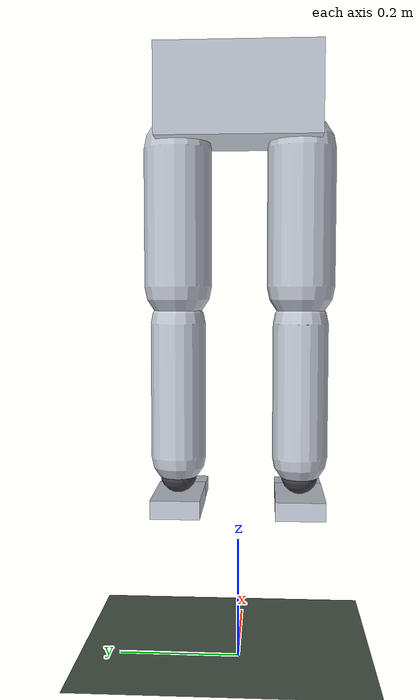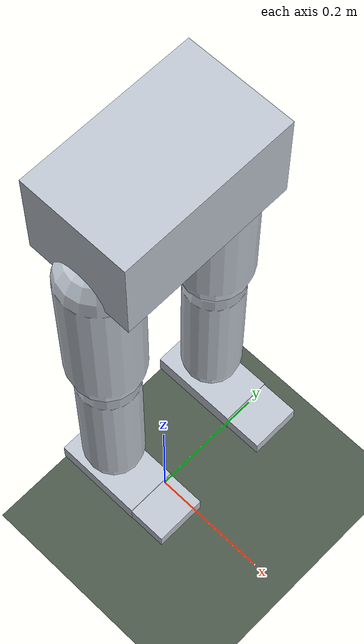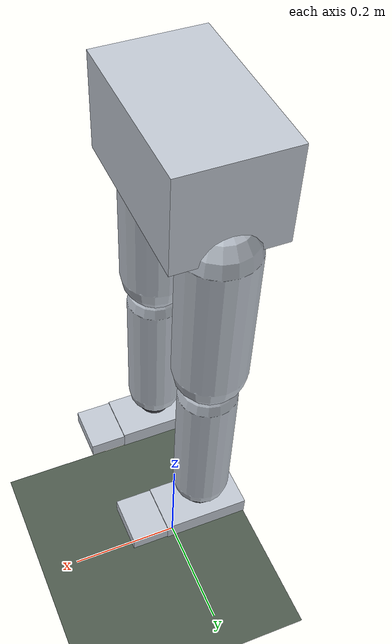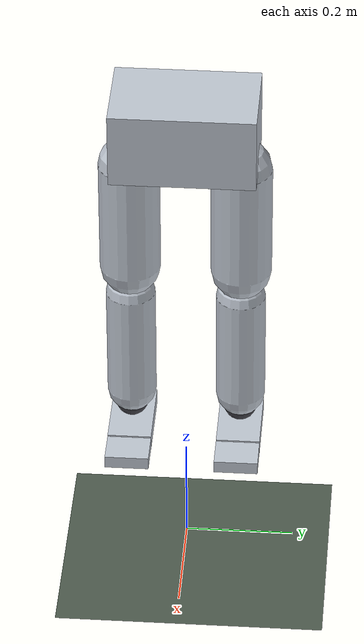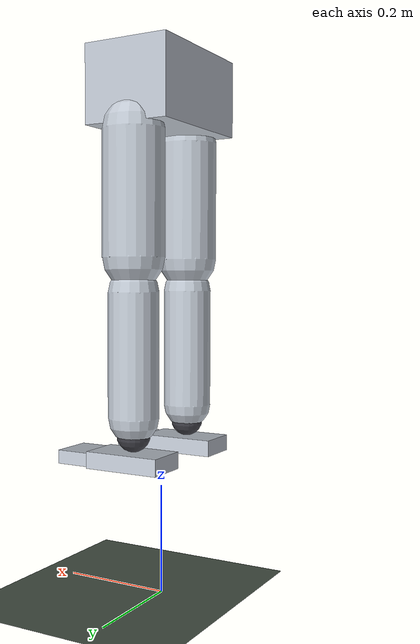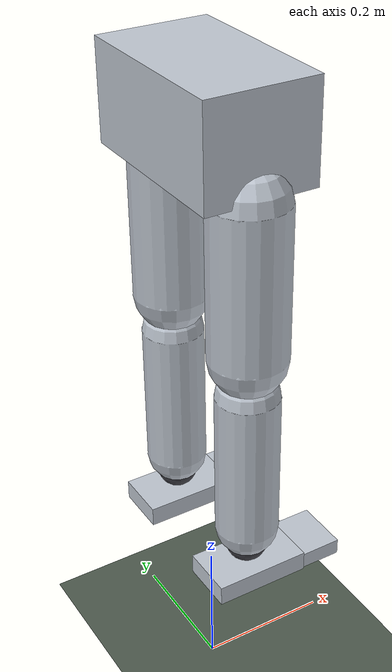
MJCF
<mujoco model="asimov1_legs">
  <compiler angle="radian" autolimits="true" />
  <option timestep="0.002" integrator="implicitfast" />
  <default>
    <geom friction="1.0 0.005 0.0001" rgba="0.75 0.78 0.82 1" />
  </default>
  <statistic center="0 0 0.495" extent="1.089" />
  <visual>
    <global azimuth="120" elevation="-15" />
  </visual>
  <worldbody>
    <light pos="0 0 3" dir="0 0 -1" />
    <geom name="floor" type="plane" size="5 5 0.1" rgba="0.3 0.35 0.3 1" />
    <body name="pelvis" pos="0 0 0.87">
      <geom name="pelvis_geom" type="box" pos="0 0 0.05" size="0.08 0.13 0.07" mass="4.0" />
      <site name="pelvis_site" pos="0 0 0" />
      <body name="left_hip" pos="0 0.1 0">
        <joint name="left_hip_pitch_joint" axis="0 1 0" range="-2.09 1" damping="1.0" armature="0.05" limited="true" />
        <geom type="sphere" size="0.03" mass="0.5" contype="0" conaffinity="0" rgba="0.25 0.25 0.28 1" />
        <body name="left_hip2" pos="0 0 0">
          <joint name="left_hip_roll_joint" axis="-1 0 0" range="-0.79 0.79" damping="1.0" armature="0.05" limited="true" />
          <geom type="sphere" size="0.03" mass="0.4" contype="0" conaffinity="0" rgba="0.25 0.25 0.28 1" />
          <body name="left_thigh" pos="0 0 0">
            <joint name="left_hip_yaw_joint" axis="0 0 1" range="-0.79 0.79" damping="1.0" armature="0.01" limited="true" />
            <geom type="capsule" fromto="0 0 -0.03 0 0 -0.25" size="0.055" mass="2.9" />
            <body name="left_shank" pos="0 0 -0.28">
              <joint name="left_knee_joint" axis="0 1 0" range="0 1.5" damping="1.0" armature="0.05" limited="true" />
              <geom type="capsule" fromto="0 0 -0.03 0 0 -0.25" size="0.045" mass="1.8" />
              <body name="left_ankle" pos="0 0 -0.28">
                <joint name="left_ankle_pitch_joint" axis="0 1 0" range="-0.35 0.35" damping="1.0" armature="0.05" limited="true" />
                <geom type="sphere" size="0.03" mass="0.2" contype="0" conaffinity="0" rgba="0.25 0.25 0.28 1" />
                <body name="left_foot" pos="0 0 0">
                  <joint name="left_ankle_roll_joint" axis="-1 0 0" range="-0.1 0.1" damping="1.0" armature="0.01" limited="true" />
                  <geom type="box" pos="0.003333 0 -0.045" size="0.07 0.04 0.015" mass="0.9" />
                  <body name="left_toe" pos="0.07333 0 -0.045">
                    <joint name="left_toe_joint" axis="0 1 0" range="-1.05 0" stiffness="2.67" damping="0.05" limited="true" />
                    <geom type="box" pos="0.03 0 0" size="0.03 0.04 0.012" mass="0.15" />
                  </body>
                </body>
              </body>
            </body>
          </body>
        </body>
      </body>
      <body name="right_hip" pos="0 -0.1 0">
        <joint name="right_hip_pitch_joint" axis="0 -1 0" range="-1 2.09" damping="1.0" armature="0.05" limited="true" />
        <geom type="sphere" size="0.03" mass="0.5" contype="0" conaffinity="0" rgba="0.25 0.25 0.28 1" />
        <body name="right_hip2" pos="0 0 0">
          <joint name="right_hip_roll_joint" axis="-1 0 0" range="-0.79 0.79" damping="1.0" armature="0.05" limited="true" />
          <geom type="sphere" size="0.03" mass="0.4" contype="0" conaffinity="0" rgba="0.25 0.25 0.28 1" />
          <body name="right_thigh" pos="0 0 0">
            <joint name="right_hip_yaw_joint" axis="0 0 1" range="-0.79 0.79" damping="1.0" armature="0.01" limited="true" />
            <geom type="capsule" fromto="0 0 -0.03 0 0 -0.25" size="0.055" mass="2.9" />
            <body name="right_shank" pos="0 0 -0.28">
              <joint name="right_knee_joint" axis="0 -1 0" range="-1.5 0" damping="1.0" armature="0.05" limited="true" />
              <geom type="capsule" fromto="0 0 -0.03 0 0 -0.25" size="0.045" mass="1.8" />
              <body name="right_ankle" pos="0 0 -0.28">
                <joint name="right_ankle_pitch_joint" axis="0 -1 0" range="-0.35 0.35" damping="1.0" armature="0.05" limited="true" />
                <geom type="sphere" size="0.03" mass="0.2" contype="0" conaffinity="0" rgba="0.25 0.25 0.28 1" />
                <body name="right_foot" pos="0 0 0">
                  <joint name="right_ankle_roll_joint" axis="-1 0 0" range="-0.1 0.1" damping="1.0" armature="0.01" limited="true" />
                  <geom type="box" pos="0.003333 0 -0.045" size="0.07 0.04 0.015" mass="0.9" />
                  <body name="right_toe" pos="0.07333 0 -0.045">
                    <joint name="right_toe_joint" axis="0 -1 0" range="0 1.05" stiffness="2.67" damping="0.05" limited="true" />
                    <geom type="box" pos="0.03 0 0" size="0.03 0.04 0.012" mass="0.15" />
                  </body>
                </body>
              </body>
            </body>
          </body>
        </body>
      </body>
    </body>
  </worldbody>
  <contact>
    <exclude body1="pelvis" body2="left_thigh" />
    <exclude body1="pelvis" body2="right_thigh" />
  </contact>
  <actuator>
    <motor name="left_hip_pitch" joint="left_hip_pitch_joint" ctrlrange="-120 120" />
    <motor name="left_hip_roll" joint="left_hip_roll_joint" ctrlrange="-90 90" />
    <motor name="left_hip_yaw" joint="left_hip_yaw_joint" ctrlrange="-60 60" />
    <motor name="left_knee" joint="left_knee_joint" ctrlrange="-75 75" />
    <motor name="left_ankle_pitch" joint="left_ankle_pitch_joint" ctrlrange="-145.4 145.4" />
    <motor name="left_ankle_roll" joint="left_ankle_roll_joint" ctrlrange="-57.6 57.6" />
    <motor name="right_hip_pitch" joint="right_hip_pitch_joint" ctrlrange="-120 120" />
    <motor name="right_hip_roll" joint="right_hip_roll_joint" ctrlrange="-90 90" />
    <motor name="right_hip_yaw" joint="right_hip_yaw_joint" ctrlrange="-60 60" />
    <motor name="right_knee" joint="right_knee_joint" ctrlrange="-75 75" />
    <motor name="right_ankle_pitch" joint="right_ankle_pitch_joint" ctrlrange="-145.4 145.4" />
    <motor name="right_ankle_roll" joint="right_ankle_roll_joint" ctrlrange="-57.6 57.6" />
  </actuator>
  <sensor>
    <jointpos name="left_hip_pitch_joint_pos" joint="left_hip_pitch_joint" />
    <jointvel name="left_hip_pitch_joint_vel" joint="left_hip_pitch_joint" />
    <jointpos name="left_hip_roll_joint_pos" joint="left_hip_roll_joint" />
    <jointvel name="left_hip_roll_joint_vel" joint="left_hip_roll_joint" />
    <jointpos name="left_hip_yaw_joint_pos" joint="left_hip_yaw_joint" />
    <jointvel name="left_hip_yaw_joint_vel" joint="left_hip_yaw_joint" />
    <jointpos name="left_knee_joint_pos" joint="left_knee_joint" />
    <jointvel name="left_knee_joint_vel" joint="left_knee_joint" />
    <jointpos name="left_ankle_pitch_joint_pos" joint="left_ankle_pitch_joint" />
    <jointvel name="left_ankle_pitch_joint_vel" joint="left_ankle_pitch_joint" />
    <jointpos name="left_ankle_roll_joint_pos" joint="left_ankle_roll_joint" />
    <jointvel name="left_ankle_roll_joint_vel" joint="left_ankle_roll_joint" />
    <jointpos name="right_hip_pitch_joint_pos" joint="right_hip_pitch_joint" />
    <jointvel name="right_hip_pitch_joint_vel" joint="right_hip_pitch_joint" />
    <jointpos name="right_hip_roll_joint_pos" joint="right_hip_roll_joint" />
    <jointvel name="right_hip_roll_joint_vel" joint="right_hip_roll_joint" />
    <jointpos name="right_hip_yaw_joint_pos" joint="right_hip_yaw_joint" />
    <jointvel name="right_hip_yaw_joint_vel" joint="right_hip_yaw_joint" />
    <jointpos name="right_knee_joint_pos" joint="right_knee_joint" />
    <jointvel name="right_knee_joint_vel" joint="right_knee_joint" />
    <jointpos name="right_ankle_pitch_joint_pos" joint="right_ankle_pitch_joint" />
    <jointvel name="right_ankle_pitch_joint_vel" joint="right_ankle_pitch_joint" />
    <jointpos name="right_ankle_roll_joint_pos" joint="right_ankle_roll_joint" />
    <jointvel name="right_ankle_roll_joint_vel" joint="right_ankle_roll_joint" />
  </sensor>
</mujoco>
